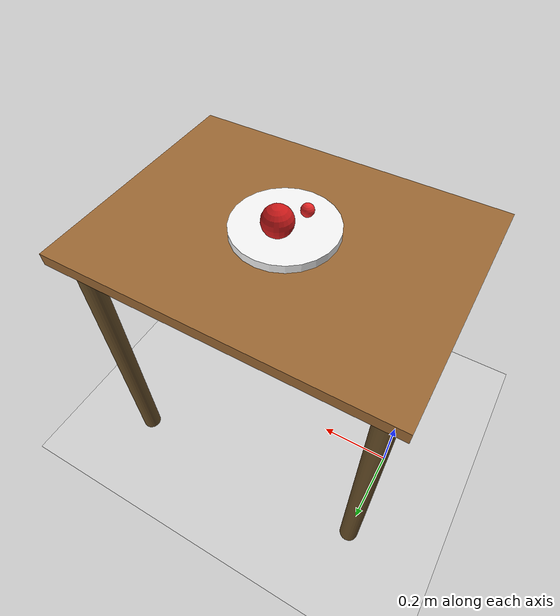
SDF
<?xml version="1.0" ?>
<sdf version="1.8">
  <world name="feeding_world">

    <!-- Physics -->
    <physics name="1ms" type="ignored">
      <max_step_size>0.001</max_step_size>
      <real_time_factor>1.0</real_time_factor>
    </physics>

    <!-- Plugins -->
    <plugin filename="gz-sim-physics-system" name="gz::sim::systems::Physics"/>
    <plugin filename="gz-sim-user-commands-system" name="gz::sim::systems::UserCommands"/>
    <plugin filename="gz-sim-scene-broadcaster-system" name="gz::sim::systems::SceneBroadcaster"/>
    <plugin filename="gz-sim-sensors-system" name="gz::sim::systems::Sensors">
      <render_engine>ogre2</render_engine>
    </plugin>

    <!-- Lighting -->
    <light type="directional" name="sun">
      <cast_shadows>true</cast_shadows>
      <pose>0 0 10 0 0 0</pose>
      <diffuse>0.8 0.8 0.8 1</diffuse>
      <specular>0.2 0.2 0.2 1</specular>
      <attenuation>
        <range>1000</range>
        <constant>0.9</constant>
        <linear>0.01</linear>
        <quadratic>0.001</quadratic>
      </attenuation>
      <direction>-0.5 0.1 -0.9</direction>
    </light>

    <!-- Ground Plane -->
    <model name="ground_plane">
      <static>true</static>
      <link name="link">
        <collision name="collision">
          <geometry>
            <plane>
              <normal>0 0 1</normal>
              <size>10 10</size>
            </plane>
          </geometry>
        </collision>
        <visual name="visual">
          <geometry>
            <plane>
              <normal>0 0 1</normal>
              <size>10 10</size>
            </plane>
          </geometry>
          <material>
            <ambient>0.8 0.8 0.8 1</ambient>
            <diffuse>0.8 0.8 0.8 1</diffuse>
          </material>
        </visual>
      </link>
    </model>

    <!-- Feeding Table -->
    <model name="feeding_table">
      <static>true</static>
      <pose>0.35 0 0 0 0 0</pose>

      <!-- Table top -->
      <link name="table_top">
        <pose>0 0 0.74 0 0 0</pose>
        <collision name="collision">
          <geometry>
            <box>
              <size>0.8 0.6 0.03</size>
            </box>
          </geometry>
        </collision>
        <visual name="visual">
          <geometry>
            <box>
              <size>0.8 0.6 0.03</size>
            </box>
          </geometry>
          <material>
            <ambient>0.6 0.4 0.2 1</ambient>
            <diffuse>0.6 0.4 0.2 1</diffuse>
          </material>
        </visual>
      </link>

      <!-- Table legs -->
      <link name="leg1">
        <pose>-0.35 -0.25 0.37 0 0 0</pose>
        <collision name="collision">
          <geometry><cylinder><radius>0.025</radius><length>0.74</length></cylinder></geometry>
        </collision>
        <visual name="visual">
          <geometry><cylinder><radius>0.025</radius><length>0.74</length></cylinder></geometry>
          <material><ambient>0.4 0.3 0.15 1</ambient><diffuse>0.4 0.3 0.15 1</diffuse></material>
        </visual>
      </link>

      <link name="leg2">
        <pose>0.35 -0.25 0.37 0 0 0</pose>
        <collision name="collision">
          <geometry><cylinder><radius>0.025</radius><length>0.74</length></cylinder></geometry>
        </collision>
        <visual name="visual">
          <geometry><cylinder><radius>0.025</radius><length>0.74</length></cylinder></geometry>
          <material><ambient>0.4 0.3 0.15 1</ambient><diffuse>0.4 0.3 0.15 1</diffuse></material>
        </visual>
      </link>

      <link name="leg3">
        <pose>-0.35 0.25 0.37 0 0 0</pose>
        <collision name="collision">
          <geometry><cylinder><radius>0.025</radius><length>0.74</length></cylinder></geometry>
        </collision>
        <visual name="visual">
          <geometry><cylinder><radius>0.025</radius><length>0.74</length></cylinder></geometry>
          <material><ambient>0.4 0.3 0.15 1</ambient><diffuse>0.4 0.3 0.15 1</diffuse></material>
        </visual>
      </link>

      <link name="leg4">
        <pose>0.35 0.25 0.37 0 0 0</pose>
        <collision name="collision">
          <geometry><cylinder><radius>0.025</radius><length>0.74</length></cylinder></geometry>
        </collision>
        <visual name="visual">
          <geometry><cylinder><radius>0.025</radius><length>0.74</length></cylinder></geometry>
          <material><ambient>0.4 0.3 0.15 1</ambient><diffuse>0.4 0.3 0.15 1</diffuse></material>
        </visual>
      </link>

      <!-- Fixed joints for legs -->
      <joint name="leg1_joint" type="fixed"><parent>table_top</parent><child>leg1</child></joint>
      <joint name="leg2_joint" type="fixed"><parent>table_top</parent><child>leg2</child></joint>
      <joint name="leg3_joint" type="fixed"><parent>table_top</parent><child>leg3</child></joint>
      <joint name="leg4_joint" type="fixed"><parent>table_top</parent><child>leg4</child></joint>
    </model>

    <!-- Plate on table -->
    <model name="plate">
      <static>true</static>
      <pose>0.35 0 0.77 0 0 0</pose>
      <link name="plate_link">
        <collision name="collision">
          <geometry>
            <cylinder>
              <radius>0.12</radius>
              <length>0.02</length>
            </cylinder>
          </geometry>
        </collision>
        <visual name="visual">
          <geometry>
            <cylinder>
              <radius>0.12</radius>
              <length>0.02</length>
            </cylinder>
          </geometry>
          <material>
            <ambient>0.95 0.95 0.95 1</ambient>
            <diffuse>0.95 0.95 0.95 1</diffuse>
          </material>
        </visual>
      </link>
    </model>

    <!-- Apple (food item on plate) -->
    <model name="apple">
      <static>true</static>
      <pose>0.35 0.03 0.81 0 0 0</pose>
      <link name="apple_link">
        <collision name="collision">
          <geometry>
            <sphere><radius>0.035</radius></sphere>
          </geometry>
        </collision>
        <visual name="visual">
          <geometry>
            <sphere><radius>0.035</radius></sphere>
          </geometry>
          <material>
            <ambient>0.8 0.1 0.1 1</ambient>
            <diffuse>0.8 0.1 0.1 1</diffuse>
          </material>
        </visual>
      </link>
    </model>

    <!-- Strawberry (food item on plate) -->
    <model name="strawberry">
      <static>true</static>
      <pose>0.32 -0.04 0.80 0 0 0</pose>
      <link name="strawberry_link">
        <collision name="collision">
          <geometry>
            <sphere><radius>0.015</radius></sphere>
          </geometry>
        </collision>
        <visual name="visual">
          <geometry>
            <sphere><radius>0.015</radius></sphere>
          </geometry>
          <material>
            <ambient>0.9 0.15 0.15 1</ambient>
            <diffuse>0.9 0.15 0.15 1</diffuse>
          </material>
        </visual>
      </link>
    </model>

  </world>
</sdf>
